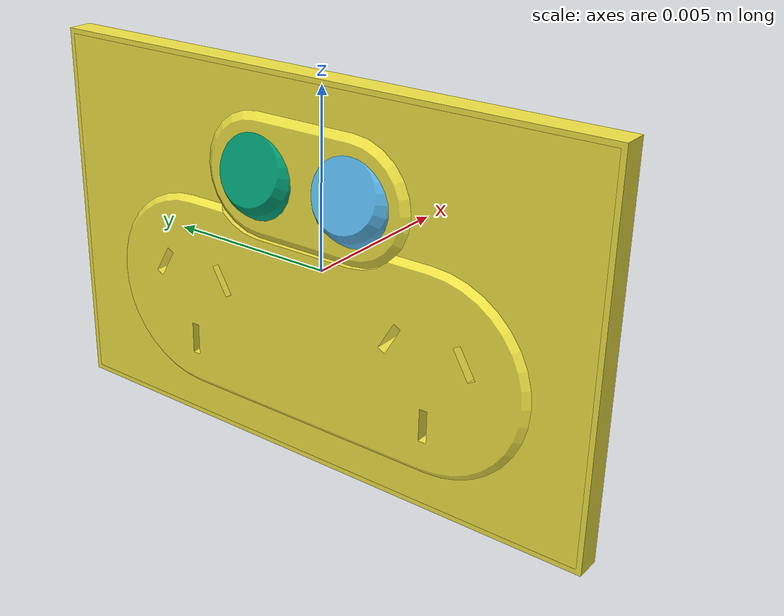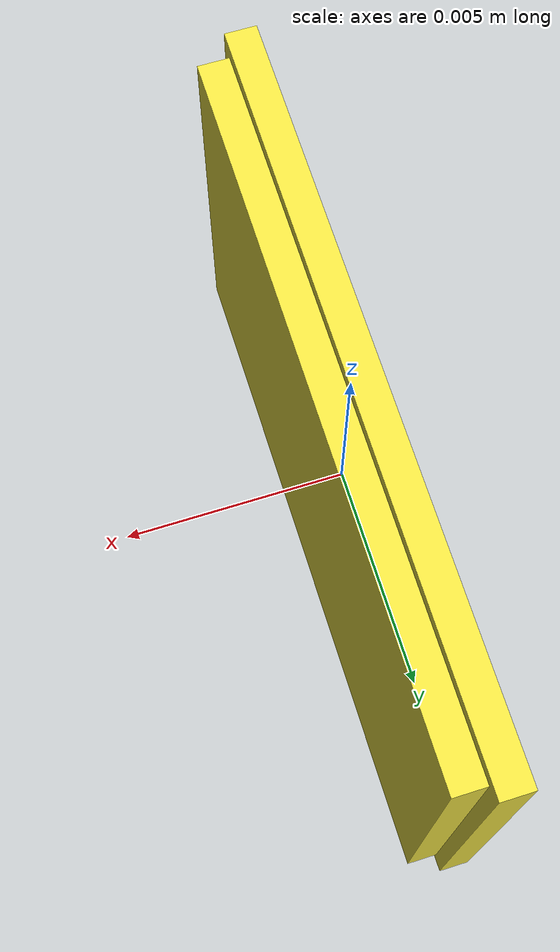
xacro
<robot name="partnet_8f7b77c0-5c54-4638-a879-a9b5e3ccdd56" xmlns:xacro="http://wiki.ros.org/xacro">
	<xacro:property name="scale" value="100" /><link name="base" />
	<link name="link_0">
		<visual name="switch-1">
			<origin xyz="${0 / scale} ${-0.24648599999999998 / scale} ${-0.076858 / scale}" />
			<geometry>
				<mesh filename="package://switch_description/urdf/100924/textured_objs/original-7.obj" scale="${1 / scale} ${1 / scale} ${1 / scale}" />
			</geometry>
		</visual>
		<collision>
			<origin xyz="${0 / scale} ${-0.24648599999999998 / scale} ${-0.076858 / scale}" />
			<geometry>
				<mesh filename="package://switch_description/urdf/100924/textured_objs/original-7.obj" scale="${1 / scale} ${1 / scale} ${1 / scale}" />
			</geometry>
		</collision>
	</link>
	<joint name="joint_0" type="revolute">
		<origin xyz="${0 / scale} ${0.24648599999999998 / scale} ${0.076858 / scale}" />
		<axis xyz="1 0 0" />
		<child link="link_0" />
		<parent link="link_2" />
		<limit lower="0.0" upper="0.5235987755982988" effort="10.0" velocity="0.1" />
	</joint>
	<link name="link_1">
		<visual name="switch-2">
			<origin xyz="${0 / scale} ${-0.24648599999999998 / scale} ${-0.076858 / scale}" />
			<geometry>
				<mesh filename="package://switch_description/urdf/100924/textured_objs/original-4.obj" scale="${1 / scale} ${1 / scale} ${1 / scale}" />
			</geometry>
		</visual>
		<collision>
			<origin xyz="${0 / scale} ${-0.24648599999999998 / scale} ${-0.076858 / scale}" />
			<geometry>
				<mesh filename="package://switch_description/urdf/100924/textured_objs/original-4.obj" scale="${1 / scale} ${1 / scale} ${1 / scale}" />
			</geometry>
		</collision>
	</link>
	<joint name="joint_1" type="revolute">
		<origin xyz="${0 / scale} ${0.24648599999999998 / scale} ${0.076858 / scale}" />
		<axis xyz="1 0 0" />
		<child link="link_1" />
		<parent link="link_2" />
		<limit lower="0.0" upper="0.5235987755982988" effort="10.0" velocity="0.1" />
	</joint>
	<link name="link_2">
		<visual name="base_body-3">
			<origin xyz="${0 / scale} ${0 / scale} ${0 / scale}" />
			<geometry>
				<mesh filename="package://switch_description/urdf/100924/textured_objs/original-3.obj" scale="${1 / scale} ${1 / scale} ${1 / scale}" />
			</geometry>
		</visual>
		<visual name="base_body-3">
			<origin xyz="${0 / scale} ${0 / scale} ${0 / scale}" />
			<geometry>
				<mesh filename="package://switch_description/urdf/100924/textured_objs/original-2.obj" scale="${1 / scale} ${1 / scale} ${1 / scale}" />
			</geometry>
		</visual>
		<visual name="base_body-3">
			<origin xyz="${0 / scale} ${0 / scale} ${0 / scale}" />
			<geometry>
				<mesh filename="package://switch_description/urdf/100924/textured_objs/original-8.obj" scale="${1 / scale} ${1 / scale} ${1 / scale}" />
			</geometry>
		</visual>
		<visual name="base_body-3">
			<origin xyz="${0 / scale} ${0 / scale} ${0 / scale}" />
			<geometry>
				<mesh filename="package://switch_description/urdf/100924/textured_objs/original-13.obj" scale="${1 / scale} ${1 / scale} ${1 / scale}" />
			</geometry>
		</visual>
		<visual name="base_body-3">
			<origin xyz="${0 / scale} ${0 / scale} ${0 / scale}" />
			<geometry>
				<mesh filename="package://switch_description/urdf/100924/textured_objs/original-9.obj" scale="${1 / scale} ${1 / scale} ${1 / scale}" />
			</geometry>
		</visual>
		<visual name="base_body-3">
			<origin xyz="${0 / scale} ${0 / scale} ${0 / scale}" />
			<geometry>
				<mesh filename="package://switch_description/urdf/100924/textured_objs/original-5.obj" scale="${1 / scale} ${1 / scale} ${1 / scale}" />
			</geometry>
		</visual>
		<visual name="base_body-3">
			<origin xyz="${0 / scale} ${0 / scale} ${0 / scale}" />
			<geometry>
				<mesh filename="package://switch_description/urdf/100924/textured_objs/original-6.obj" scale="${1 / scale} ${1 / scale} ${1 / scale}" />
			</geometry>
		</visual>
		<visual name="base_body-3">
			<origin xyz="${0 / scale} ${0 / scale} ${0 / scale}" />
			<geometry>
				<mesh filename="package://switch_description/urdf/100924/textured_objs/original-11.obj" scale="${1 / scale} ${1 / scale} ${1 / scale}" />
			</geometry>
		</visual>
		<visual name="base_body-3">
			<origin xyz="${0 / scale} ${0 / scale} ${0 / scale}" />
			<geometry>
				<mesh filename="package://switch_description/urdf/100924/textured_objs/original-12.obj" scale="${1 / scale} ${1 / scale} ${1 / scale}" />
			</geometry>
		</visual>
		<visual name="base_body-3">
			<origin xyz="${0 / scale} ${0 / scale} ${0 / scale}" />
			<geometry>
				<mesh filename="package://switch_description/urdf/100924/textured_objs/original-1.obj" scale="${1 / scale} ${1 / scale} ${1 / scale}" />
			</geometry>
		</visual>
		<visual name="base_body-3">
			<origin xyz="${0 / scale} ${0 / scale} ${0 / scale}" />
			<geometry>
				<mesh filename="package://switch_description/urdf/100924/textured_objs/original-10.obj" scale="${1 / scale} ${1 / scale} ${1 / scale}" />
			</geometry>
		</visual>
		<visual name="base_body-3">
			<origin xyz="${0 / scale} ${0 / scale} ${0 / scale}" />
			<geometry>
				<mesh filename="package://switch_description/urdf/100924/textured_objs/original-14.obj" scale="${1 / scale} ${1 / scale} ${1 / scale}" />
			</geometry>
		</visual>
		<collision>
			<origin xyz="${0 / scale} ${0 / scale} ${0 / scale}" />
			<geometry>
				<mesh filename="package://switch_description/urdf/100924/textured_objs/original-3.obj" scale="${1 / scale} ${1 / scale} ${1 / scale}" />
			</geometry>
		</collision>
		<collision>
			<origin xyz="${0 / scale} ${0 / scale} ${0 / scale}" />
			<geometry>
				<mesh filename="package://switch_description/urdf/100924/textured_objs/original-2.obj" scale="${1 / scale} ${1 / scale} ${1 / scale}" />
			</geometry>
		</collision>
		<collision>
			<origin xyz="${0 / scale} ${0 / scale} ${0 / scale}" />
			<geometry>
				<mesh filename="package://switch_description/urdf/100924/textured_objs/original-8.obj" scale="${1 / scale} ${1 / scale} ${1 / scale}" />
			</geometry>
		</collision>
		<collision>
			<origin xyz="${0 / scale} ${0 / scale} ${0 / scale}" />
			<geometry>
				<mesh filename="package://switch_description/urdf/100924/textured_objs/original-13.obj" scale="${1 / scale} ${1 / scale} ${1 / scale}" />
			</geometry>
		</collision>
		<collision>
			<origin xyz="${0 / scale} ${0 / scale} ${0 / scale}" />
			<geometry>
				<mesh filename="package://switch_description/urdf/100924/textured_objs/original-9.obj" scale="${1 / scale} ${1 / scale} ${1 / scale}" />
			</geometry>
		</collision>
		<collision>
			<origin xyz="${0 / scale} ${0 / scale} ${0 / scale}" />
			<geometry>
				<mesh filename="package://switch_description/urdf/100924/textured_objs/original-5.obj" scale="${1 / scale} ${1 / scale} ${1 / scale}" />
			</geometry>
		</collision>
		<collision>
			<origin xyz="${0 / scale} ${0 / scale} ${0 / scale}" />
			<geometry>
				<mesh filename="package://switch_description/urdf/100924/textured_objs/original-6.obj" scale="${1 / scale} ${1 / scale} ${1 / scale}" />
			</geometry>
		</collision>
		<collision>
			<origin xyz="${0 / scale} ${0 / scale} ${0 / scale}" />
			<geometry>
				<mesh filename="package://switch_description/urdf/100924/textured_objs/original-11.obj" scale="${1 / scale} ${1 / scale} ${1 / scale}" />
			</geometry>
		</collision>
		<collision>
			<origin xyz="${0 / scale} ${0 / scale} ${0 / scale}" />
			<geometry>
				<mesh filename="package://switch_description/urdf/100924/textured_objs/original-12.obj" scale="${1 / scale} ${1 / scale} ${1 / scale}" />
			</geometry>
		</collision>
		<collision>
			<origin xyz="${0 / scale} ${0 / scale} ${0 / scale}" />
			<geometry>
				<mesh filename="package://switch_description/urdf/100924/textured_objs/original-1.obj" scale="${1 / scale} ${1 / scale} ${1 / scale}" />
			</geometry>
		</collision>
		<collision>
			<origin xyz="${0 / scale} ${0 / scale} ${0 / scale}" />
			<geometry>
				<mesh filename="package://switch_description/urdf/100924/textured_objs/original-10.obj" scale="${1 / scale} ${1 / scale} ${1 / scale}" />
			</geometry>
		</collision>
		<collision>
			<origin xyz="${0 / scale} ${0 / scale} ${0 / scale}" />
			<geometry>
				<mesh filename="package://switch_description/urdf/100924/textured_objs/original-14.obj" scale="${1 / scale} ${1 / scale} ${1 / scale}" />
			</geometry>
		</collision>
	</link>
	<joint name="joint_2" type="fixed">
		<origin rpy="1.570796326794897 0 -1.570796326794897" xyz="${0 / scale} ${0 / scale} ${0 / scale}" />
		<child link="link_2" />
		<parent link="base" />
	</joint>
</robot>
